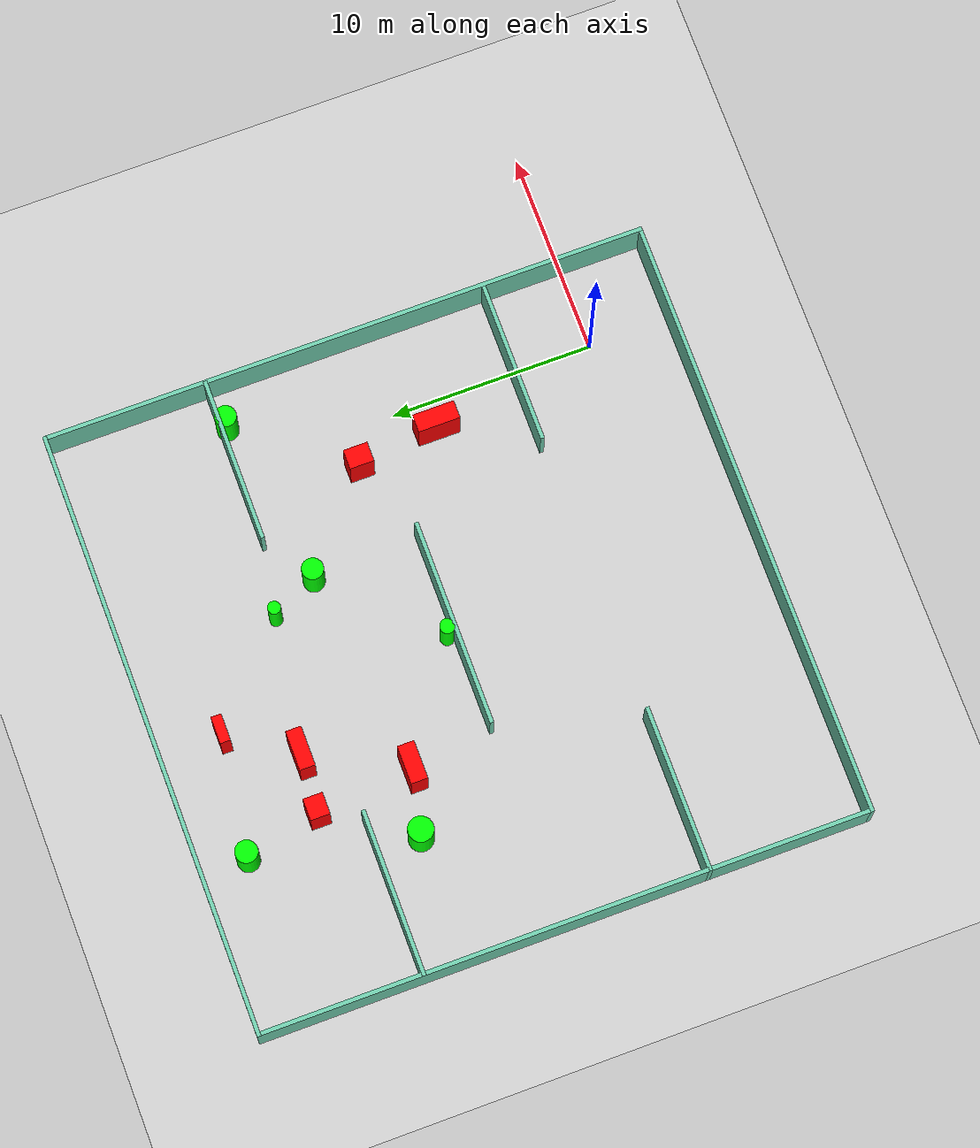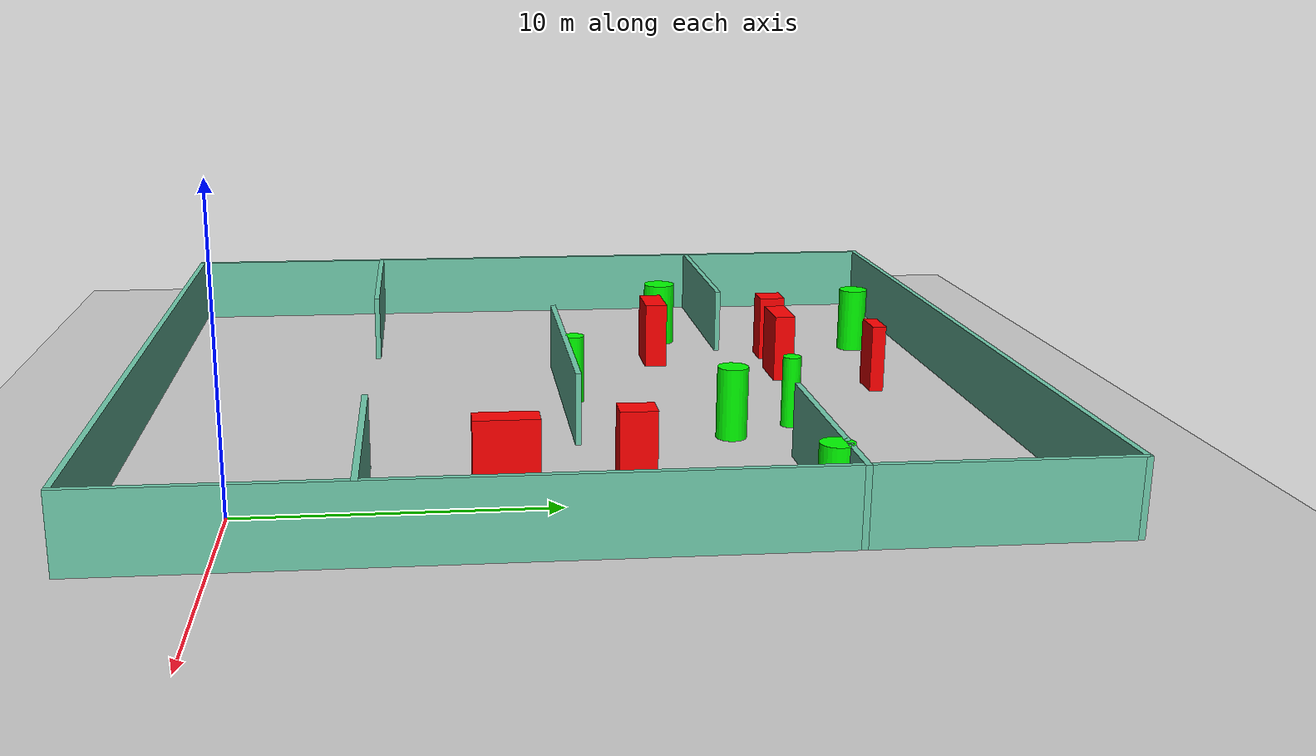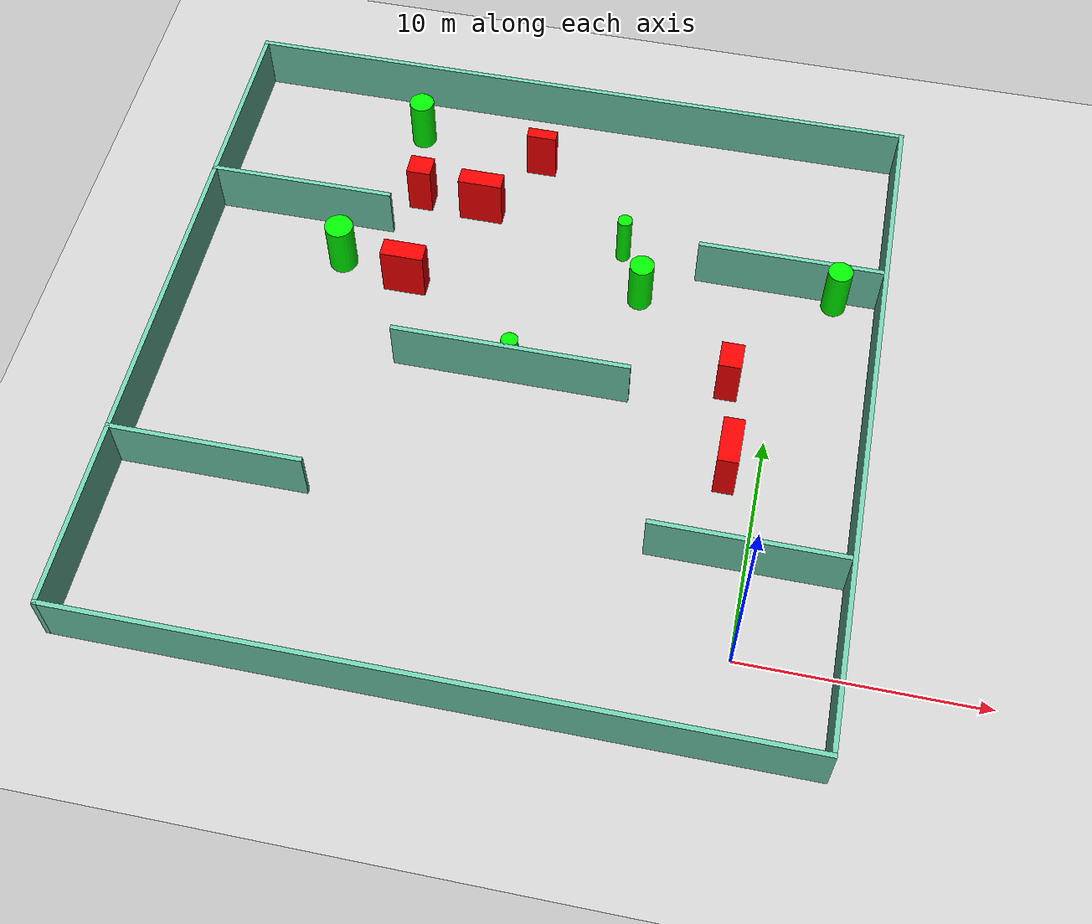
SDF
<sdf version="1.7">
 <world name="default">
  <light name="sun" type="directional">
   <pose>0 0 10 0 -0 0</pose>
   <diffuse>0.8 0.8 0.8 1</diffuse>
   <specular>0.2 0.2 0.2 1</specular>
   <attenuation>
    <range>1000</range>
    <constant>0.9</constant>
    <linear>0.01</linear>
    <quadratic>0.001</quadratic>
   </attenuation>
   <direction>-0.5 0.1 -0.9</direction>
   <spot><inner_angle>0</inner_angle><outer_angle>0</outer_angle><falloff>0</falloff></spot>
  </light>
  <model name="ground_plane">
   <static>1</static>
   <link name="link">
    <collision name="collision">
     <geometry><plane><normal>0 0 1</normal><size>100 100</size></plane></geometry>
     <surface>
      <contact><collide_bitmask>65535</collide_bitmask></contact>
      <friction><ode><mu>100</mu><mu2>50</mu2></ode></friction>
     </surface>
    </collision>
    <visual name="visual">
     <cast_shadows>0</cast_shadows>
     <geometry><plane><normal>0 0 1</normal><size>100 100</size></plane></geometry>
     <material>
      <script><uri>file://media/materials/scripts/gazebo.material</uri><name>Gazebo/Grey</name></script>
     </material>
    </visual>
   </link>
  </model>
  <gravity>0 0 -9.8</gravity>
  <magnetic_field>6e-06 2.3e-05 -4.2e-05</magnetic_field>
  <atmosphere type="adiabatic"/>
  <physics type="ode">
   <max_step_size>0.001</max_step_size>
   <real_time_factor>1</real_time_factor>
   <real_time_update_rate>1000</real_time_update_rate>
  </physics>
  <scene><ambient>0.4 0.4 0.4 1</ambient><background>0.7 0.7 0.7 1</background><shadows>1</shadows></scene>
  <spherical_coordinates>
   <surface_model>EARTH_WGS84</surface_model>
   <latitude_deg>0</latitude_deg>
   <longitude_deg>0</longitude_deg>
   <elevation>0</elevation>
   <heading_deg>0</heading_deg>
  </spherical_coordinates>
  <model name="my_base_walls">
   <link name="Wall_10">
    <collision name="Wall_10_Collision">
     <geometry><box><size>8.2 0.2 2.5</size></box></geometry>
     <pose>0 0 1.25 0 -0 0</pose>
    </collision>
    <visual name="Wall_10_Visual">
     <pose>0 0 1.25 0 -0 0</pose>
     <geometry><box><size>8.2 0.2 2.5</size></box></geometry>
     <material>
      <script><uri>file://media/materials/scripts/gazebo.material</uri><name>Gazebo/Grey</name></script>
      <ambient>0.435294 0.796078 0.67451 1</ambient>
     </material>
     <meta><layer>0</layer></meta>
    </visual>
    <pose>-11 -7 0 0 -0 0</pose>
   </link>
   <link name="Wall_12">
    <collision name="Wall_12_Collision">
     <geometry><box><size>8.2 0.2 2.5</size></box></geometry>
     <pose>0 0 1.25 0 -0 0</pose>
    </collision>
    <visual name="Wall_12_Visual">
     <pose>0 0 1.25 0 -0 0</pose>
     <geometry><box><size>8.2 0.2 2.5</size></box></geometry>
     <material>
      <script><uri>file://media/materials/scripts/gazebo.material</uri><name>Gazebo/Grey</name></script>
      <ambient>0.435294 0.796078 0.67451 1</ambient>
     </material>
     <meta><layer>0</layer></meta>
    </visual>
    <pose>-11 7 0 0 -0 0</pose>
   </link>
   <link name="Wall_14">
    <collision name="Wall_14_Collision">
     <geometry><box><size>8.2 0.2 2.5</size></box></geometry>
     <pose>0 0 1.25 0 -0 0</pose>
    </collision>
    <visual name="Wall_14_Visual">
     <pose>0 0 1.25 0 -0 0</pose>
     <geometry><box><size>8.2 0.2 2.5</size></box></geometry>
     <material>
      <script><uri>file://media/materials/scripts/gazebo.material</uri><name>Gazebo/Grey</name></script>
      <ambient>0.435294 0.796078 0.67451 1</ambient>
     </material>
     <meta><layer>0</layer></meta>
    </visual>
    <pose>11 7 0 0 -0 3.14159</pose>
   </link>
   <link name="Wall_16">
    <collision name="Wall_16_Collision">
     <geometry><box><size>10.2 0.2 2.5</size></box></geometry>
     <pose>0 0 1.25 0 -0 0</pose>
    </collision>
    <visual name="Wall_16_Visual">
     <pose>0 0 1.25 0 -0 0</pose>
     <geometry><box><size>10.2 0.2 2.5</size></box></geometry>
     <material>
      <script><uri>file://media/materials/scripts/gazebo.material</uri><name>Gazebo/Grey</name></script>
      <ambient>0.435294 0.796078 0.67451 1</ambient>
     </material>
     <meta><layer>0</layer></meta>
    </visual>
    <pose>0 0 0 0 -0 3.14159</pose>
   </link>
   <link name="Wall_2">
    <collision name="Wall_2_Collision">
     <geometry><box><size>30.2 0.2 2.5</size></box></geometry>
     <pose>0 0 1.25 0 -0 0</pose>
    </collision>
    <visual name="Wall_2_Visual">
     <pose>0 0 1.25 0 -0 0</pose>
     <geometry><box><size>30.2 0.2 2.5</size></box></geometry>
     <material>
      <script><uri>file://media/materials/scripts/gazebo.material</uri><name>Gazebo/Grey</name></script>
      <ambient>0.435294 0.796078 0.67451 1</ambient>
     </material>
     <meta><layer>0</layer></meta>
    </visual>
    <pose>0 -15 0 0 -0 3.14159</pose>
   </link>
   <link name="Wall_3">
    <collision name="Wall_3_Collision">
     <geometry><box><size>30.2 0.2 2.5</size></box></geometry>
     <pose>0 0 1.25 0 -0 0</pose>
    </collision>
    <visual name="Wall_3_Visual">
     <pose>0 0 1.25 0 -0 0</pose>
     <geometry><box><size>30.2 0.2 2.5</size></box></geometry>
     <material>
      <script><uri>file://media/materials/scripts/gazebo.material</uri><name>Gazebo/Grey</name></script>
      <ambient>0.435294 0.796078 0.67451 1</ambient>
     </material>
     <meta><layer>0</layer></meta>
    </visual>
    <pose>-15 0 0 0 -0 1.5708</pose>
   </link>
   <link name="Wall_4">
    <collision name="Wall_4_Collision">
     <geometry><box><size>30.2 0.2 2.5</size></box></geometry>
     <pose>0 0 1.25 0 -0 0</pose>
    </collision>
    <visual name="Wall_4_Visual">
     <pose>0 0 1.25 0 -0 0</pose>
     <geometry><box><size>30.2 0.2 2.5</size></box></geometry>
     <material>
      <script><uri>file://media/materials/scripts/gazebo.material</uri><name>Gazebo/Grey</name></script>
      <ambient>0.435294 0.796078 0.67451 1</ambient>
     </material>
     <meta><layer>0</layer></meta>
    </visual>
    <pose>0 15 0 0 -0 0</pose>
   </link>
   <link name="Wall_6">
    <collision name="Wall_6_Collision">
     <geometry><box><size>30.2 0.2 2.5</size></box></geometry>
     <pose>0 0 1.25 0 -0 0</pose>
    </collision>
    <visual name="Wall_6_Visual">
     <pose>0 0 1.25 0 -0 0</pose>
     <geometry><box><size>30.2 0.2 2.5</size></box></geometry>
     <material>
      <script><uri>file://media/materials/scripts/gazebo.material</uri><name>Gazebo/Grey</name></script>
      <ambient>0.435294 0.796078 0.67451 1</ambient>
     </material>
     <meta><layer>0</layer></meta>
    </visual>
    <pose>15 0 0 0 -0 1.5708</pose>
   </link>
   <link name="Wall_8">
    <collision name="Wall_8_Collision">
     <geometry><box><size>8.2 0.2 2.5</size></box></geometry>
     <pose>0 0 1.25 0 -0 0</pose>
    </collision>
    <visual name="Wall_8_Visual">
     <pose>0 0 1.25 0 -0 0</pose>
     <geometry><box><size>8.2 0.2 2.5</size></box></geometry>
     <material>
      <script><uri>file://media/materials/scripts/gazebo.material</uri><name>Gazebo/Grey</name></script>
      <ambient>0.435294 0.796078 0.67451 1</ambient>
     </material>
     <meta><layer>0</layer></meta>
    </visual>
    <pose>11 -7 0 0 -0 3.14159</pose>
   </link>
   <static>1</static>
   <pose>-11 11 0 0 -0 0</pose>
  </model>
  <model name="cylinder1">
   <static>1</static>
   <link name="link">
    <inertial>
     <mass>1</mass>
     <inertia><ixx>0.5</ixx><ixy>0</ixy><ixz>0</ixz><iyy>0.5</iyy><iyz>0</iyz><izz>1</izz></inertia>
    </inertial>
    <collision name="collision">
     <geometry><cylinder><radius>0.3193630624341223</radius><length>2.5</length></cylinder></geometry>
    </collision>
    <visual name="visual">
     <geometry><cylinder><radius>0.3193630624341223</radius><length>2.5</length></cylinder></geometry>
     <material>
      <ambient>0 1 0 1</ambient>
      <diffuse>0 1 0 1</diffuse>
      <specular>0.1 0.1 0.1 1</specular>
      <emissive>0 0 0 0</emissive>
     </material>
    </visual>
   </link>
   <pose>-7.458926362691187 18.622363920546892 1.25 0 0 0</pose>
  </model>
  <model name="cylinder2">
   <static>1</static>
   <link name="link">
    <inertial>
     <mass>1</mass>
     <inertia><ixx>0.5</ixx><ixy>0</ixy><ixz>0</ixz><iyy>0.5</iyy><iyz>0</iyz><izz>1</izz></inertia>
    </inertial>
    <collision name="collision">
     <geometry><cylinder><radius>0.3669516978172116</radius><length>2.5</length></cylinder></geometry>
    </collision>
    <visual name="visual">
     <geometry><cylinder><radius>0.3669516978172116</radius><length>2.5</length></cylinder></geometry>
     <material>
      <ambient>0 1 0 1</ambient>
      <diffuse>0 1 0 1</diffuse>
      <specular>0.1 0.1 0.1 1</specular>
      <emissive>0 0 0 0</emissive>
     </material>
    </visual>
   </link>
   <pose>-11.081839550257651 11.353264020436455 1.25 0 0 0</pose>
  </model>
  <model name="cylinder3">
   <static>1</static>
   <link name="link">
    <inertial>
     <mass>1</mass>
     <inertia><ixx>0.5</ixx><ixy>0</ixy><ixz>0</ixz><iyy>0.5</iyy><iyz>0</iyz><izz>1</izz></inertia>
    </inertial>
    <collision name="collision">
     <geometry><cylinder><radius>0.5319238207690307</radius><length>2.5</length></cylinder></geometry>
    </collision>
    <visual name="visual">
     <geometry><cylinder><radius>0.5319238207690307</radius><length>2.5</length></cylinder></geometry>
     <material>
      <ambient>0 1 0 1</ambient>
      <diffuse>0 1 0 1</diffuse>
      <specular>0.1 0.1 0.1 1</specular>
      <emissive>0 0 0 0</emissive>
     </material>
    </visual>
   </link>
   <pose>-6.31645714393137 16.30917948610363 1.25 0 0 0</pose>
  </model>
  <model name="cylinder4">
   <static>1</static>
   <link name="link">
    <inertial>
     <mass>1</mass>
     <inertia><ixx>0.5</ixx><ixy>0</ixy><ixz>0</ixz><iyy>0.5</iyy><iyz>0</iyz><izz>1</izz></inertia>
    </inertial>
    <collision name="collision">
     <geometry><cylinder><radius>0.5538058875424176</radius><length>2.5</length></cylinder></geometry>
    </collision>
    <visual name="visual">
     <geometry><cylinder><radius>0.5538058875424176</radius><length>2.5</length></cylinder></geometry>
     <material>
      <ambient>0 1 0 1</ambient>
      <diffuse>0 1 0 1</diffuse>
      <specular>0.1 0.1 0.1 1</specular>
      <emissive>0 0 0 0</emissive>
     </material>
    </visual>
   </link>
   <pose>-17.873560758784013 23.692689269543735 1.25 0 0 0</pose>
  </model>
  <model name="cylinder5">
   <static>1</static>
   <link name="link">
    <inertial>
     <mass>1</mass>
     <inertia><ixx>0.5</ixx><ixy>0</ixy><ixz>0</ixz><iyy>0.5</iyy><iyz>0</iyz><izz>1</izz></inertia>
    </inertial>
    <collision name="collision">
     <geometry><cylinder><radius>0.6257775953734371</radius><length>2.5</length></cylinder></geometry>
    </collision>
    <visual name="visual">
     <geometry><cylinder><radius>0.6257775953734371</radius><length>2.5</length></cylinder></geometry>
     <material>
      <ambient>0 1 0 1</ambient>
      <diffuse>0 1 0 1</diffuse>
      <specular>0.1 0.1 0.1 1</specular>
      <emissive>0 0 0 0</emissive>
     </material>
    </visual>
   </link>
   <pose>-19.66295621302025 15.807652087236015 1.25 0 0 0</pose>
  </model>
  <model name="cylinder6">
   <static>1</static>
   <link name="link">
    <inertial>
     <mass>1</mass>
     <inertia><ixx>0.5</ixx><ixy>0</ixy><ixz>0</ixz><iyy>0.5</iyy><iyz>0</iyz><izz>1</izz></inertia>
    </inertial>
    <collision name="collision">
     <geometry><cylinder><radius>0.5325079353842327</radius><length>2.5</length></cylinder></geometry>
    </collision>
    <visual name="visual">
     <geometry><cylinder><radius>0.5325079353842327</radius><length>2.5</length></cylinder></geometry>
     <material>
      <ambient>0 1 0 1</ambient>
      <diffuse>0 1 0 1</diffuse>
      <specular>0.1 0.1 0.1 1</specular>
      <emissive>0 0 0 0</emissive>
     </material>
    </visual>
   </link>
   <pose>2.082229150813774 17.657133371866024 1.25 0 0 0</pose>
  </model>
  <model name="box1">
   <static>1</static>
   <link name="link">
    <inertial>
     <mass>1</mass>
     <inertia><ixx>0.083</ixx><ixy>0</ixy><ixz>0</ixz><iyy>0.083</iyy><iyz>0</iyz><izz>0.083</izz></inertia>
    </inertial>
    <collision name="collision">
     <geometry><box><size>1.958784117648526 0.7746695362231396 2.5</size></box></geometry>
    </collision>
    <visual name="visual">
     <geometry><box><size>1.958784117648526 0.7746695362231396 2.5</size></box></geometry>
     <material>
      <ambient>1 0 0 1</ambient>
      <diffuse>1 0 0 1</diffuse>
      <specular>0.1 0.1 0.1 1</specular>
      <emissive>0 0 0 0</emissive>
     </material>
    </visual>
    <sensor name="my_contact" type="contact">
     <contact><collision>box_collision</collision><topic>__default_topic__</topic></contact>
    </sensor>
   </link>
   <pose>-14.171059790596551 19.731856483624025 1.25 0 0 0</pose>
  </model>
  <model name="box2">
   <static>1</static>
   <link name="link">
    <inertial>
     <mass>1</mass>
     <inertia><ixx>0.083</ixx><ixy>0</ixy><ixz>0</ixz><iyy>0.083</iyy><iyz>0</iyz><izz>0.083</izz></inertia>
    </inertial>
    <collision name="collision">
     <geometry><box><size>1.0751530213040614 0.971971768091681 2.5</size></box></geometry>
    </collision>
    <visual name="visual">
     <geometry><box><size>1.0751530213040614 0.971971768091681 2.5</size></box></geometry>
     <material>
      <ambient>1 0 0 1</ambient>
      <diffuse>1 0 0 1</diffuse>
      <specular>0.1 0.1 0.1 1</specular>
      <emissive>0 0 0 0</emissive>
     </material>
    </visual>
    <sensor name="my_contact" type="contact">
     <contact><collision>box_collision</collision><topic>__default_topic__</topic></contact>
    </sensor>
   </link>
   <pose>-17.00380121446008 19.95850128484181 1.25 0 0 0</pose>
  </model>
  <model name="box3">
   <static>1</static>
   <link name="link">
    <inertial>
     <mass>1</mass>
     <inertia><ixx>0.083</ixx><ixy>0</ixy><ixz>0</ixz><iyy>0.083</iyy><iyz>0</iyz><izz>0.083</izz></inertia>
    </inertial>
    <collision name="collision">
     <geometry><box><size>0.8825983298097346 2.083472784771186 2.5</size></box></geometry>
    </collision>
    <visual name="visual">
     <geometry><box><size>0.8825983298097346 2.083472784771186 2.5</size></box></geometry>
     <material>
      <ambient>1 0 0 1</ambient>
      <diffuse>1 0 0 1</diffuse>
      <specular>0.1 0.1 0.1 1</specular>
      <emissive>0 0 0 0</emissive>
     </material>
    </visual>
    <sensor name="my_contact" type="contact">
     <contact><collision>box_collision</collision><topic>__default_topic__</topic></contact>
    </sensor>
   </link>
   <pose>-1.3616796654186238 8.33109619723604 1.25 0 0 0</pose>
  </model>
  <model name="box4">
   <static>1</static>
   <link name="link">
    <inertial>
     <mass>1</mass>
     <inertia><ixx>0.083</ixx><ixy>0</ixy><ixz>0</ixz><iyy>0.083</iyy><iyz>0</iyz><izz>0.083</izz></inertia>
    </inertial>
    <collision name="collision">
     <geometry><box><size>1.8871413558177326 0.8399788695526741 2.5</size></box></geometry>
    </collision>
    <visual name="visual">
     <geometry><box><size>1.8871413558177326 0.8399788695526741 2.5</size></box></geometry>
     <material>
      <ambient>1 0 0 1</ambient>
      <diffuse>1 0 0 1</diffuse>
      <specular>0.1 0.1 0.1 1</specular>
      <emissive>0 0 0 0</emissive>
     </material>
    </visual>
    <sensor name="my_contact" type="contact">
     <contact><collision>box_collision</collision><topic>__default_topic__</topic></contact>
    </sensor>
   </link>
   <pose>-16.584451320215443 15.09239180238103 1.25 0 0 0</pose>
  </model>
  <model name="box5">
   <static>1</static>
   <link name="link">
    <inertial>
     <mass>1</mass>
     <inertia><ixx>0.083</ixx><ixy>0</ixy><ixz>0</ixz><iyy>0.083</iyy><iyz>0</iyz><izz>0.083</izz></inertia>
    </inertial>
    <collision name="collision">
     <geometry><box><size>1.3296047817430714 0.5158549581069294 2.5</size></box></geometry>
    </collision>
    <visual name="visual">
     <geometry><box><size>1.3296047817430714 0.5158549581069294 2.5</size></box></geometry>
     <material>
      <ambient>1 0 0 1</ambient>
      <diffuse>1 0 0 1</diffuse>
      <specular>0.1 0.1 0.1 1</specular>
      <emissive>0 0 0 0</emissive>
     </material>
    </visual>
    <sensor name="my_contact" type="contact">
     <contact><collision>box_collision</collision><topic>__default_topic__</topic></contact>
    </sensor>
   </link>
   <pose>-12.026708227113303 22.88408560722042 1.25 0 0 0</pose>
  </model>
  <model name="box6">
   <static>1</static>
   <link name="link">
    <inertial>
     <mass>1</mass>
     <inertia><ixx>0.083</ixx><ixy>0</ixy><ixz>0</ixz><iyy>0.083</iyy><iyz>0</iyz><izz>0.083</izz></inertia>
    </inertial>
    <collision name="collision">
     <geometry><box><size>0.9687231535243985 1.203465910386396 2.5</size></box></geometry>
    </collision>
    <visual name="visual">
     <geometry><box><size>0.9687231535243985 1.203465910386396 2.5</size></box></geometry>
     <material>
      <ambient>1 0 0 1</ambient>
      <diffuse>1 0 0 1</diffuse>
      <specular>0.1 0.1 0.1 1</specular>
      <emissive>0 0 0 0</emissive>
     </material>
    </visual>
    <sensor name="my_contact" type="contact">
     <contact><collision>box_collision</collision><topic>__default_topic__</topic></contact>
    </sensor>
   </link>
   <pose>-1.8997186566745086 12.421803015071465 1.25 0 0 0</pose>
  </model>
 </world>
</sdf>
